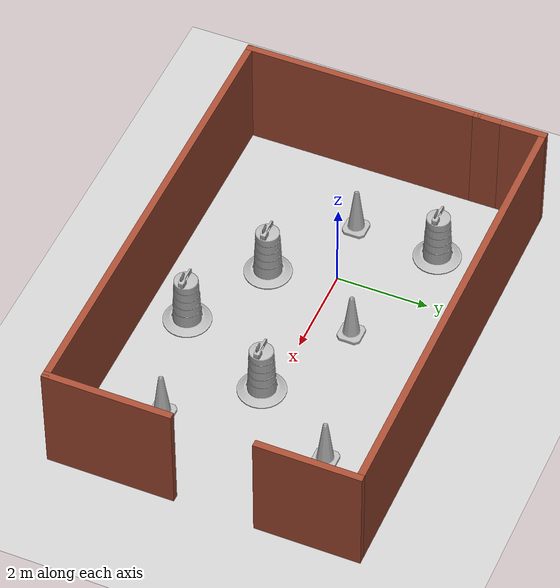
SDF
<sdf version="1.7">
 <world name="default">
  <light name="sun" type="directional">
   <pose>0 0 10 0 -0 0</pose>
   <diffuse>0.8 0.8 0.8 1</diffuse>
   <specular>0.2 0.2 0.2 1</specular>
   <attenuation>
    <range>1000</range>
    <constant>0.9</constant>
    <linear>0.01</linear>
    <quadratic>0.001</quadratic>
   </attenuation>
   <direction>-0.5 0.1 -0.9</direction>
   <spot><inner_angle>0</inner_angle><outer_angle>0</outer_angle><falloff>0</falloff></spot>
  </light>
  <model name="ground_plane">
   <static>1</static>
   <link name="link">
    <collision name="collision">
     <geometry><plane><normal>0 0 1</normal><size>100 100</size></plane></geometry>
     <surface>
      <contact><collide_bitmask>65535</collide_bitmask></contact>
      <friction><ode><mu>100</mu><mu2>50</mu2></ode></friction>
     </surface>
    </collision>
    <visual name="visual">
     <cast_shadows>0</cast_shadows>
     <geometry><plane><normal>0 0 1</normal><size>100 100</size></plane></geometry>
     <material>
      <script><uri>file://media/materials/scripts/gazebo.material</uri><name>Gazebo/Grey</name></script>
     </material>
    </visual>
   </link>
  </model>
  <gravity>0 0 -9.8</gravity>
  <magnetic_field>6e-06 2.3e-05 -4.2e-05</magnetic_field>
  <atmosphere type="adiabatic"/>
  <physics type="ode">
   <max_step_size>0.001</max_step_size>
   <real_time_factor>1</real_time_factor>
   <real_time_update_rate>1000</real_time_update_rate>
  </physics>
  <scene><ambient>0.4 0.4 0.4 1</ambient><background>0.7 0.7 0.7 1</background><shadows>1</shadows></scene>
  <audio><device>default</device></audio>
  <spherical_coordinates>
   <surface_model>EARTH_WGS84</surface_model>
   <latitude_deg>0</latitude_deg>
   <longitude_deg>0</longitude_deg>
   <elevation>0</elevation>
   <heading_deg>0</heading_deg>
  </spherical_coordinates>
  <model name="my_world_to_roomba">
   <pose>1.71348 -0.069755 0 0 -0 0</pose>
   <link name="Wall_0">
    <collision name="Wall_0_Collision">
     <geometry><box><size>10 0.15 2.5</size></box></geometry>
     <pose>0 0 1.25 0 -0 0</pose>
    </collision>
    <visual name="Wall_0_Visual">
     <pose>0 0 1.25 0 -0 0</pose>
     <geometry><box><size>10 0.15 2.5</size></box></geometry>
     <material>
      <script><uri>file://media/materials/scripts/gazebo.material</uri><name>Gazebo/Bricks</name></script>
      <ambient>1 1 1 1</ambient>
     </material>
     <meta><layer>0</layer></meta>
    </visual>
    <pose>0 -3.275 0 0 -0 0</pose>
   </link>
   <link name="Wall_1">
    <collision name="Wall_1_Collision">
     <geometry><box><size>2.75 0.15 2.5</size></box></geometry>
     <pose>0 0 1.25 0 -0 0</pose>
    </collision>
    <visual name="Wall_1_Visual">
     <pose>0 0 1.25 0 -0 0</pose>
     <geometry><box><size>2.75 0.15 2.5</size></box></geometry>
     <material>
      <script><uri>file://media/materials/scripts/gazebo.material</uri><name>Gazebo/Bricks</name></script>
      <ambient>1 1 1 1</ambient>
     </material>
     <meta><layer>0</layer></meta>
    </visual>
    <pose>4.925 -1.975 0 0 -0 1.5708</pose>
   </link>
   <link name="Wall_4">
    <collision name="Wall_4_Collision">
     <geometry><box><size>5.25 0.15 2.5</size></box></geometry>
     <pose>0 0 1.25 0 -0 0</pose>
    </collision>
    <visual name="Wall_4_Visual">
     <pose>0 0 1.25 0 -0 0</pose>
     <geometry><box><size>5.25 0.15 2.5</size></box></geometry>
     <material>
      <script><uri>file://media/materials/scripts/gazebo.material</uri><name>Gazebo/Bricks</name></script>
      <ambient>1 1 1 1</ambient>
     </material>
     <meta><layer>0</layer></meta>
    </visual>
    <pose>-4.925 -0.725 0 0 -0 1.5708</pose>
   </link>
   <link name="Wall_5">
    <collision name="Wall_5_Collision">
     <geometry><box><size>0.75 0.15 2.5</size></box></geometry>
     <pose>0 0 1.25 0 -0 0</pose>
    </collision>
    <visual name="Wall_5_Visual">
     <pose>0 0 1.25 0 -0 0</pose>
     <geometry><box><size>0.75 0.15 2.5</size></box></geometry>
     <material>
      <script><uri>file://media/materials/scripts/gazebo.material</uri><name>Gazebo/Bricks</name></script>
      <ambient>1 1 1 1</ambient>
     </material>
     <meta><layer>0</layer></meta>
    </visual>
    <pose>-4.925 2.125 0 0 -0 1.5708</pose>
   </link>
   <link name="Wall_6">
    <collision name="Wall_6_Collision">
     <geometry><box><size>1 0.15 2.5</size></box></geometry>
     <pose>0 0 1.25 0 -0 0</pose>
    </collision>
    <visual name="Wall_6_Visual">
     <pose>0 0 1.25 0 -0 0</pose>
     <geometry><box><size>1 0.15 2.5</size></box></geometry>
     <material>
      <script><uri>file://media/materials/scripts/gazebo.material</uri><name>Gazebo/Bricks</name></script>
      <ambient>1 1 1 1</ambient>
     </material>
     <meta><layer>0</layer></meta>
    </visual>
    <pose>-4.925 2.85 0 0 -0 1.5708</pose>
   </link>
   <link name="Wall_7">
    <collision name="Wall_7_Collision">
     <geometry><box><size>10 0.15 2.5</size></box></geometry>
     <pose>0 0 1.25 0 -0 0</pose>
    </collision>
    <visual name="Wall_7_Visual">
     <pose>0 0 1.25 0 -0 0</pose>
     <geometry><box><size>10 0.15 2.5</size></box></geometry>
     <material>
      <script><uri>file://media/materials/scripts/gazebo.material</uri><name>Gazebo/Bricks</name></script>
      <ambient>1 1 1 1</ambient>
     </material>
     <meta><layer>0</layer></meta>
    </visual>
    <pose>0 3.275 0 0 -0 0</pose>
   </link>
   <link name="Wall_8">
    <collision name="Wall_8_Collision">
     <geometry><box><size>2.25 0.15 2.5</size></box></geometry>
     <pose>0 0 1.25 0 -0 0</pose>
    </collision>
    <visual name="Wall_8_Visual">
     <pose>0 0 1.25 0 -0 0</pose>
     <geometry><box><size>2.25 0.15 2.5</size></box></geometry>
     <material>
      <script><uri>file://media/materials/scripts/gazebo.material</uri><name>Gazebo/Bricks</name></script>
      <ambient>1 1 1 1</ambient>
     </material>
     <meta><layer>0</layer></meta>
    </visual>
    <pose>4.925 2.225 0 0 -0 -1.5708</pose>
   </link>
   <static>1</static>
  </model>
  <model name="Construction Barrel">
   <link name="link">
    <inertial>
     <pose>0 0 0.4 0 -0 0</pose>
     <mass>500</mass>
     <inertia><ixx>51.2096</ixx><iyy>51.2096</iyy><izz>25</izz><ixy>0</ixy><ixz>0</ixz><iyz>0</iyz></inertia>
    </inertial>
    <collision name="collision">
     <geometry><mesh><uri>model://construction_barrel/meshes/construction_barrel.dae</uri></mesh></geometry>
    </collision>
    <visual name="visual">
     <geometry><mesh><uri>model://construction_barrel/meshes/construction_barrel.dae</uri></mesh></geometry>
    </visual>
   </link>
   <pose>-1.37654 1.66772 -1e-06 5e-06 -3e-06 -1.5e-05</pose>
  </model>
  <model name="Construction Cone">
   <link name="link">
    <collision name="collision">
     <geometry>
      <mesh><scale>10 10 10</scale><uri>model://construction_cone/meshes/construction_cone.dae</uri></mesh>
     </geometry>
    </collision>
    <visual name="visual">
     <geometry>
      <mesh><scale>10 10 10</scale><uri>model://construction_cone/meshes/construction_cone.dae</uri></mesh>
     </geometry>
    </visual>
    <inertial>
     <inertia><ixx>1</ixx><ixy>0</ixy><ixz>0</ixz><iyy>1</iyy><iyz>0</iyz><izz>1</izz></inertia>
     <mass>1</mass>
    </inertial>
   </link>
   <pose>-1.4589 -0.186753 0 -0 -0 -0</pose>
  </model>
  <model name="Construction Cone_0">
   <link name="link">
    <collision name="collision">
     <geometry>
      <mesh><scale>10 10 10</scale><uri>model://construction_cone/meshes/construction_cone.dae</uri></mesh>
     </geometry>
    </collision>
    <visual name="visual">
     <geometry>
      <mesh><scale>10 10 10</scale><uri>model://construction_cone/meshes/construction_cone.dae</uri></mesh>
     </geometry>
    </visual>
    <inertial>
     <inertia><ixx>1</ixx><ixy>0</ixy><ixz>0</ixz><iyy>1</iyy><iyz>0</iyz><izz>1</izz></inertia>
     <mass>1</mass>
    </inertial>
   </link>
   <pose>1.31128 0.851378 -0 0 -1e-06 0</pose>
  </model>
  <model name="Construction Barrel_0">
   <link name="link">
    <inertial>
     <pose>0 0 0.4 0 -0 0</pose>
     <mass>500</mass>
     <inertia><ixx>51.2096</ixx><iyy>51.2096</iyy><izz>25</izz><ixy>0</ixy><ixz>0</ixz><iyz>0</iyz></inertia>
    </inertial>
    <collision name="collision">
     <geometry><mesh><uri>model://construction_barrel/meshes/construction_barrel.dae</uri></mesh></geometry>
    </collision>
    <visual name="visual">
     <geometry><mesh><uri>model://construction_barrel/meshes/construction_barrel.dae</uri></mesh></geometry>
    </visual>
   </link>
   <pose>0.379858 -1.40081 -0 0 0 -1e-05</pose>
  </model>
  <model name="Construction Barrel_1">
   <link name="link">
    <inertial>
     <pose>0 0 0.4 0 -0 0</pose>
     <mass>500</mass>
     <inertia><ixx>51.2096</ixx><iyy>51.2096</iyy><izz>25</izz><ixy>0</ixy><ixz>0</ixz><iyz>0</iyz></inertia>
    </inertial>
    <collision name="collision">
     <geometry><mesh><uri>model://construction_barrel/meshes/construction_barrel.dae</uri></mesh></geometry>
    </collision>
    <visual name="visual">
     <geometry><mesh><uri>model://construction_barrel/meshes/construction_barrel.dae</uri></mesh></geometry>
    </visual>
   </link>
   <pose>2.24615 -2.39133 -0 1e-06 -1e-06 -9e-06</pose>
  </model>
  <model name="Construction Barrel_2">
   <link name="link">
    <inertial>
     <pose>0 0 0.4 0 -0 0</pose>
     <mass>500</mass>
     <inertia><ixx>51.2096</ixx><iyy>51.2096</iyy><izz>25</izz><ixy>0</ixy><ixz>0</ixz><iyz>0</iyz></inertia>
    </inertial>
    <collision name="collision">
     <geometry><mesh><uri>model://construction_barrel/meshes/construction_barrel.dae</uri></mesh></geometry>
    </collision>
    <visual name="visual">
     <geometry><mesh><uri>model://construction_barrel/meshes/construction_barrel.dae</uri></mesh></geometry>
    </visual>
   </link>
   <pose>3.39032 -0.231976 -1e-06 2e-06 -1e-06 -8e-06</pose>
  </model>
  <model name="Construction Cone_1">
   <link name="link">
    <collision name="collision">
     <geometry>
      <mesh><scale>10 10 10</scale><uri>model://construction_cone/meshes/construction_cone.dae</uri></mesh>
     </geometry>
    </collision>
    <visual name="visual">
     <geometry>
      <mesh><scale>10 10 10</scale><uri>model://construction_cone/meshes/construction_cone.dae</uri></mesh>
     </geometry>
    </visual>
    <inertial>
     <inertia><ixx>1</ixx><ixy>0</ixy><ixz>0</ixz><iyy>1</iyy><iyz>0</iyz><izz>1</izz></inertia>
     <mass>1</mass>
    </inertial>
   </link>
   <pose>4.59479 1.65388 -0 0 -0 0</pose>
  </model>
  <model name="Construction Cone_2">
   <link name="link">
    <collision name="collision">
     <geometry>
      <mesh><scale>10 10 10</scale><uri>model://construction_cone/meshes/construction_cone.dae</uri></mesh>
     </geometry>
    </collision>
    <visual name="visual">
     <geometry>
      <mesh><scale>10 10 10</scale><uri>model://construction_cone/meshes/construction_cone.dae</uri></mesh>
     </geometry>
    </visual>
    <inertial>
     <inertia><ixx>1</ixx><ixy>0</ixy><ixz>0</ixz><iyy>1</iyy><iyz>0</iyz><izz>1</izz></inertia>
     <mass>1</mass>
    </inertial>
   </link>
   <pose>4.74491 -1.8148 -0 0 -1e-06 0</pose>
  </model>
 </world>
</sdf>
